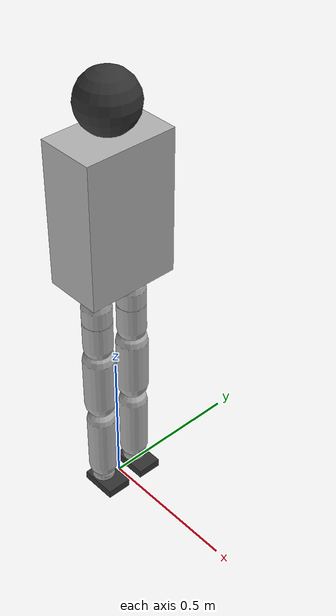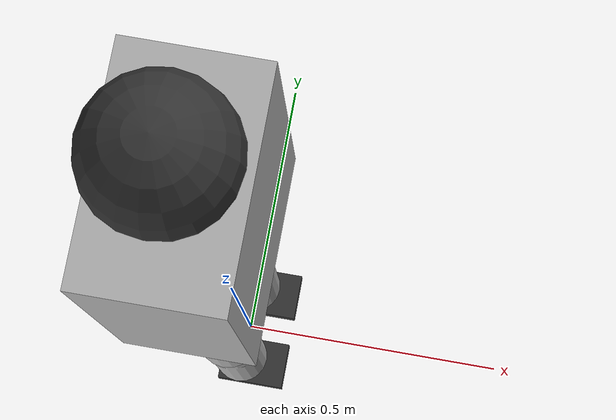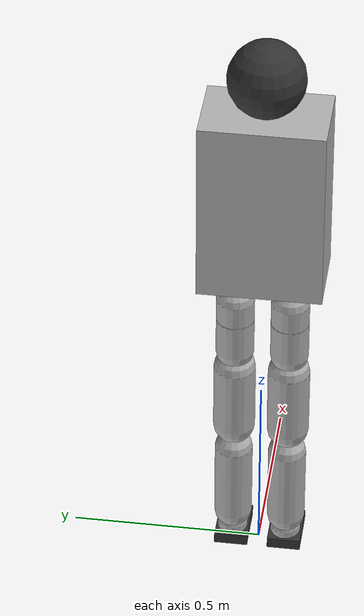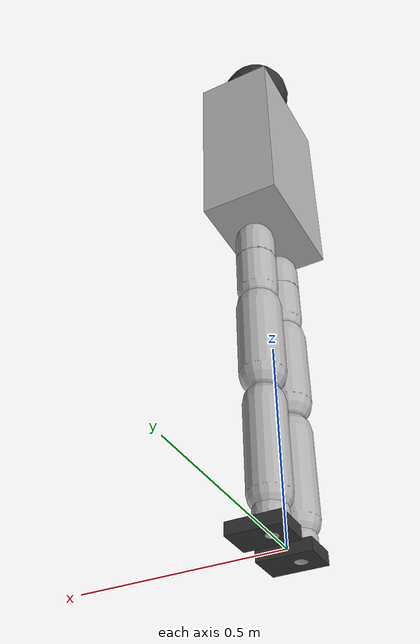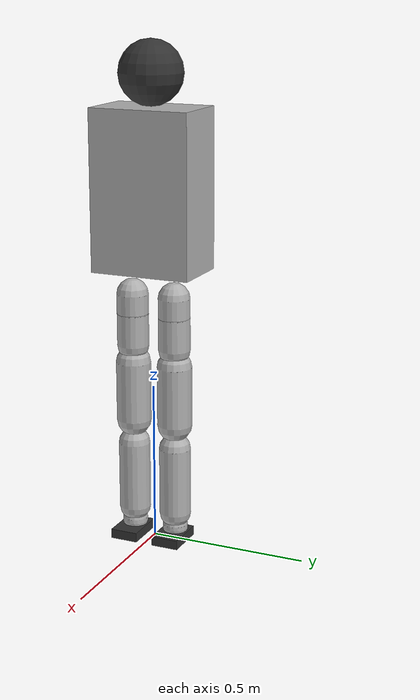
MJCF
<mujoco model="andamair_eagle_legs_v0">

  <compiler angle="radian" autolimits="true"/>

  <option timestep="0.002" iterations="3" ls_iterations="5"/>

  <default>
    <default class="andamair">
      <default class="visual">
        <geom group="2" type="capsule" contype="0" conaffinity="0" density="0"
              material="silver"/>
      </default>
      <default class="collision">
        <geom group="3" type="capsule" rgba="0.2 0.6 0.2 0.3"
              contype="1" conaffinity="1"/>
      </default>
      <default class="foot_collision">
        <geom group="3" type="box" rgba="0.2 0.6 0.2 0.3"
              contype="1" conaffinity="1" condim="3" priority="1"
              friction="0.6 0.005 0.0001"/>
      </default>
      <site group="5" rgba="1 0 0 1" size="0.01"/>
    </default>
  </default>

  <asset>
    <material name="silver" rgba="0.7 0.7 0.7 1"/>
    <material name="black" rgba="0.2 0.2 0.2 1"/>
  </asset>

  <worldbody>
    <body name="pelvis" pos="0 0 0.924" childclass="andamair">
      <freejoint name="floating_base_joint"/>
      <inertial pos="0 0 0.20" mass="28.8"
                diaginertia="0.86 0.96 0.32"/>
      <site name="imu_in_pelvis" pos="0 0 0"/>
      <camera name="tracking" pos="2.0 -1.5 0.5"
              xyaxes="0.6 0.8 0 -0.2 0.15 0.97" mode="trackcom"/>

      <!-- Visual placeholder for upper body (helps see orientation in viewer).
           Dimensions: 20 cm front-back (X) x 32 cm shoulder-shoulder (Y) x 50 cm tall (Z) -->
      <geom class="visual" type="box" size="0.10 0.16 0.25" pos="0 0 0.20"/>
      <geom class="visual" type="sphere" size="0.10" pos="0 0 0.55"
            material="black"/>

      <!-- ========== LEFT LEG ========== -->
      <body name="left_hip_pitch_link" pos="0 0.071 -0.131">
        <inertial pos="0 0 -0.04" mass="1.0"
                  diaginertia="0.0018 0.0018 0.0018"/>
        <joint name="left_hip_pitch_joint" axis="0 1 0"
               range="-2.094 0.995"/>
        <geom class="visual" size="0.05" fromto="0 0 0 0 0 -0.06"/>

        <body name="left_hip_roll_link" pos="0 0 -0.064">
          <inertial pos="0 0 -0.06" mass="0.7"
                    diaginertia="0.0010 0.0010 0.0008"/>
          <joint name="left_hip_roll_joint" axis="1 0 0"
                 range="-0.785 0.785"/>
          <geom class="visual" size="0.05" fromto="0 0 0 0 0 -0.10"/>

          <body name="left_hip_yaw_link" pos="0 0 -0.116">
            <inertial pos="0 0 -0.134" mass="1.9"
                      diaginertia="0.013 0.013 0.0035"/>
            <joint name="left_hip_yaw_joint" axis="0 0 1"
                   range="-0.785 0.785"/>
            <geom class="visual" size="0.055"
                  fromto="0 0 -0.04 0 0 -0.228"/>
            <geom class="collision" name="left_thigh_collision" size="0.055"
                  fromto="0 0 -0.04 0 0 -0.228"/>

            <body name="left_knee_link" pos="0 0 -0.268">
              <inertial pos="0 0 -0.135" mass="1.5"
                        diaginertia="0.012 0.012 0.0025"/>
              <joint name="left_knee_joint" axis="0 1 0"
                     range="0 1.501"/>
              <geom class="visual" size="0.05"
                    fromto="0 0 -0.04 0 0 -0.255"/>
              <geom class="collision" name="left_shin_collision" size="0.05"
                    fromto="0 0 -0.04 0 0 -0.255"/>

              <body name="left_ankle_pitch_link" pos="0 0 -0.295">
                <inertial pos="0 0 -0.006" mass="0.5"
                          diaginertia="0.0005 0.0005 0.0005"/>
                <joint name="left_ankle_pitch_joint" axis="0 1 0"
                       range="-0.349 0.506"/>
                <geom class="visual" size="0.04"
                      fromto="0 0 0 0 0 -0.013"/>

                <body name="left_ankle_roll_link" pos="0 0 -0.013">
                  <inertial pos="0.02 0 -0.03" mass="1.0"
                            diaginertia="0.0020 0.0030 0.0040"/>
                  <joint name="left_ankle_roll_joint" axis="1 0 0"
                         range="-0.105 0.105"/>
                  <site name="left_foot" pos="0.02 0 -0.022"/>
                  <!-- Foot: rigid metal plate, 0.129 x 0.088 x 0.03 m -->
                  <geom class="visual" type="box"
                        size="0.0645 0.044 0.015" pos="0.02 0 -0.022"
                        material="black"/>
                  <geom class="foot_collision" name="left_foot_collision"
                        size="0.0645 0.044 0.015" pos="0.02 0 -0.022"/>
                </body>
              </body>
            </body>
          </body>
        </body>
      </body>

      <!-- ========== RIGHT LEG ========== -->
      <body name="right_hip_pitch_link" pos="0 -0.071 -0.131">
        <inertial pos="0 0 -0.04" mass="1.0"
                  diaginertia="0.0018 0.0018 0.0018"/>
        <joint name="right_hip_pitch_joint" axis="0 1 0"
               range="-2.094 0.995"/>
        <geom class="visual" size="0.05" fromto="0 0 0 0 0 -0.06"/>

        <body name="right_hip_roll_link" pos="0 0 -0.064">
          <inertial pos="0 0 -0.06" mass="0.7"
                    diaginertia="0.0010 0.0010 0.0008"/>
          <joint name="right_hip_roll_joint" axis="1 0 0"
                 range="-0.785 0.785"/>
          <geom class="visual" size="0.05" fromto="0 0 0 0 0 -0.10"/>

          <body name="right_hip_yaw_link" pos="0 0 -0.116">
            <inertial pos="0 0 -0.134" mass="1.9"
                      diaginertia="0.013 0.013 0.0035"/>
            <joint name="right_hip_yaw_joint" axis="0 0 1"
                   range="-0.785 0.785"/>
            <geom class="visual" size="0.055"
                  fromto="0 0 -0.04 0 0 -0.228"/>
            <geom class="collision" name="right_thigh_collision" size="0.055"
                  fromto="0 0 -0.04 0 0 -0.228"/>

            <body name="right_knee_link" pos="0 0 -0.268">
              <inertial pos="0 0 -0.135" mass="1.5"
                        diaginertia="0.012 0.012 0.0025"/>
              <joint name="right_knee_joint" axis="0 1 0"
                     range="0 1.501"/>
              <geom class="visual" size="0.05"
                    fromto="0 0 -0.04 0 0 -0.255"/>
              <geom class="collision" name="right_shin_collision" size="0.05"
                    fromto="0 0 -0.04 0 0 -0.255"/>

              <body name="right_ankle_pitch_link" pos="0 0 -0.295">
                <inertial pos="0 0 -0.006" mass="0.5"
                          diaginertia="0.0005 0.0005 0.0005"/>
                <joint name="right_ankle_pitch_joint" axis="0 1 0"
                       range="-0.349 0.506"/>
                <geom class="visual" size="0.04"
                      fromto="0 0 0 0 0 -0.013"/>

                <body name="right_ankle_roll_link" pos="0 0 -0.013">
                  <inertial pos="0.02 0 -0.03" mass="1.0"
                            diaginertia="0.0020 0.0030 0.0040"/>
                  <joint name="right_ankle_roll_joint" axis="1 0 0"
                         range="-0.105 0.105"/>
                  <site name="right_foot" pos="0.02 0 -0.022"/>
                  <geom class="visual" type="box"
                        size="0.0645 0.044 0.015" pos="0.02 0 -0.022"
                        material="black"/>
                  <geom class="foot_collision" name="right_foot_collision"
                        size="0.0645 0.044 0.015" pos="0.02 0 -0.022"/>
                </body>
              </body>
            </body>
          </body>
        </body>
      </body>
    </body>
  </worldbody>
</mujoco>
